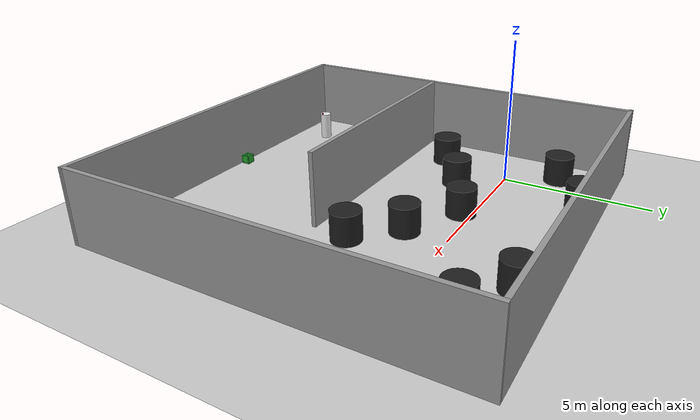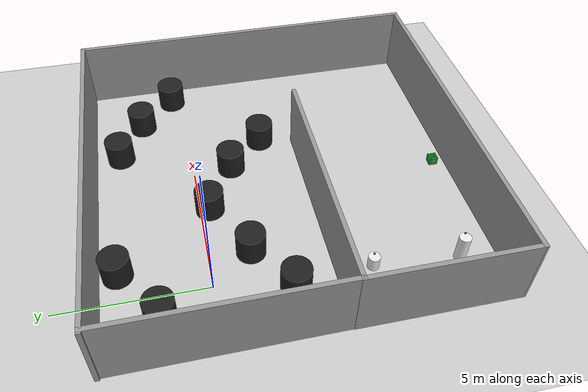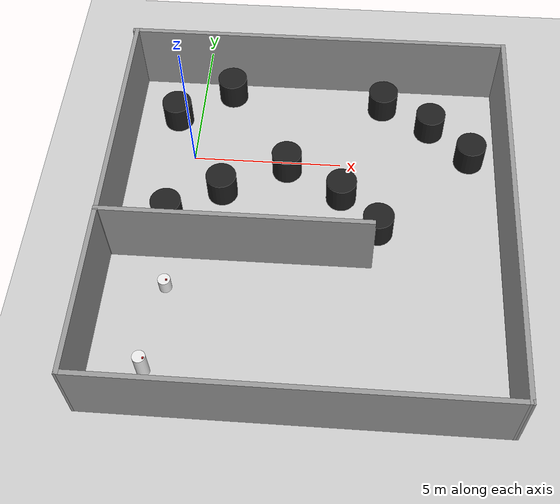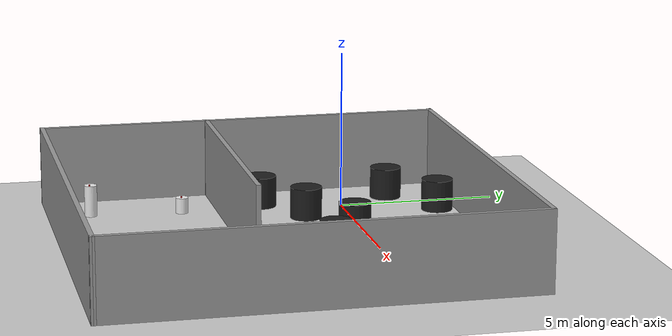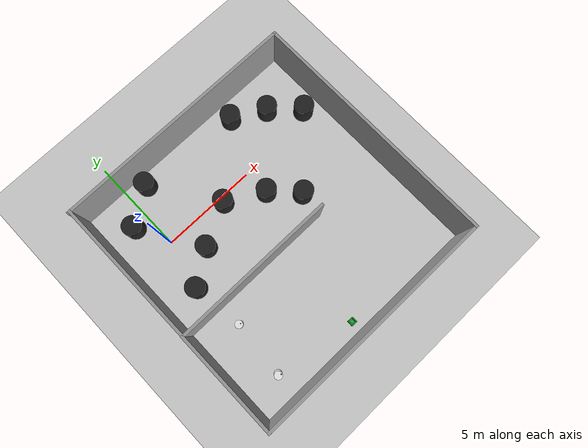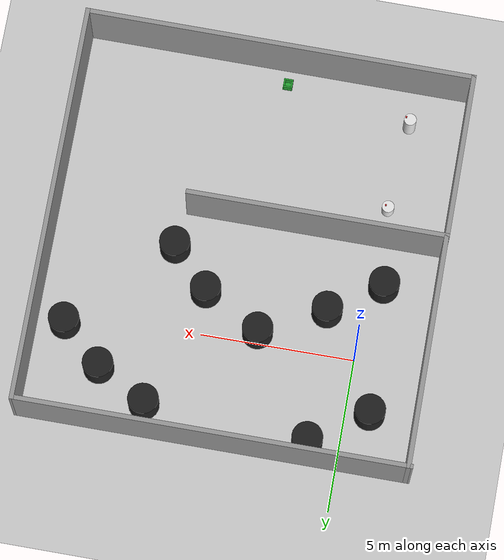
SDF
<sdf version="1.7">
 <world name="default">
  <model name="ground_plane">
   <static>1</static>
   <link name="link">
    <collision name="collision">
     <geometry><plane><normal>0 0 1</normal><size>100 100</size></plane></geometry>
     <surface>
      <contact><collide_bitmask>65535</collide_bitmask></contact>
      <friction><ode><mu>100</mu><mu2>50</mu2></ode></friction>
     </surface>
    </collision>
    <visual name="visual">
     <cast_shadows>0</cast_shadows>
     <geometry><plane><normal>0 0 1</normal><size>100 100</size></plane></geometry>
     <material>
      <script><uri>file://media/materials/scripts/gazebo.material</uri><name>Gazebo/Grey</name></script>
     </material>
    </visual>
   </link>
  </model>
  <light name="sun" type="directional">
   <pose>0 0 10 0 -0 0</pose>
   <diffuse>0.8 0.8 0.8 1</diffuse>
   <specular>0.2 0.2 0.2 1</specular>
   <attenuation>
    <range>1000</range>
    <constant>0.9</constant>
    <linear>0.01</linear>
    <quadratic>0.001</quadratic>
   </attenuation>
   <direction>-0.5 0.1 -0.9</direction>
   <spot><inner_angle>0</inner_angle><outer_angle>0</outer_angle><falloff>0</falloff></spot>
  </light>
  <model name="cube1">
   <link name="link_2">
    <inertial>
     <mass>0.009375</mass>
     <inertia>
      <ixx>3.91e-06</ixx>
      <ixy>0</ixy>
      <ixz>0</ixz>
      <iyy>3.91e-06</iyy>
      <iyz>0</iyz>
      <izz>3.91e-06</izz>
     </inertia>
    </inertial>
    <visual name="visual">
     <geometry><box><size>0.05 0.05 0.05</size></box></geometry>
     <material>
      <lighting>1</lighting>
      <script><uri>file://media/materials/scripts/gazebo.material</uri><name>Gazebo/Red</name></script>
      <ambient>1 0 0 1</ambient>
      <diffuse>1 0 0 1</diffuse>
      <specular>1 0 0 1</specular>
      <emissive>0 0 0 1</emissive>
      <shader type="vertex"><normal_map>__default__</normal_map></shader>
     </material>
    </visual>
    <collision name="collision">
     <geometry><box><size>0.05 0.05 0.05</size></box></geometry>
     <surface>
      <friction>
       <ode><mu>1</mu><mu2>1</mu2><fdir1>0 0 0</fdir1><slip1>0</slip1><slip2>0</slip2></ode>
       <torsional>
        <coefficient>1</coefficient>
        <patch_radius>0</patch_radius>
        <surface_radius>0</surface_radius>
        <use_patch_radius>1</use_patch_radius>
        <ode><slip>0</slip></ode>
       </torsional>
      </friction>
      <bounce><restitution_coefficient>0</restitution_coefficient><threshold>1e+06</threshold></bounce>
      <contact>
       <collide_without_contact>0</collide_without_contact>
       <collide_without_contact_bitmask>1</collide_without_contact_bitmask>
       <collide_bitmask>1</collide_bitmask>
       <ode>
        <soft_cfm>0</soft_cfm>
        <soft_erp>0.2</soft_erp>
        <kp>1e+13</kp>
        <kd>1</kd>
        <max_vel>0.01</max_vel>
        <min_depth>0</min_depth>
       </ode>
       <bullet>
        <split_impulse>1</split_impulse>
        <split_impulse_penetration_threshold>-0.01</split_impulse_penetration_threshold>
        <soft_cfm>0</soft_cfm>
        <soft_erp>0.2</soft_erp>
        <kp>1e+13</kp>
        <kd>1</kd>
       </bullet>
      </contact>
     </surface>
    </collision>
   </link>
   <static>0</static>
   <pose>-0.159738 -5.17279 0.524971 0 0 -0.001578</pose>
  </model>
  <model name="cube2">
   <link name="link_2">
    <inertial>
     <mass>0.009375</mass>
     <inertia>
      <ixx>3.91e-06</ixx>
      <ixy>0</ixy>
      <ixz>0</ixz>
      <iyy>3.91e-06</iyy>
      <iyz>0</iyz>
      <izz>3.91e-06</izz>
     </inertia>
    </inertial>
    <visual name="visual">
     <geometry><box><size>0.05 0.05 0.05</size></box></geometry>
     <material>
      <lighting>1</lighting>
      <script><uri>file://media/materials/scripts/gazebo.material</uri><name>Gazebo/Red</name></script>
      <ambient>1 0 0 1</ambient>
      <diffuse>1 0 0 1</diffuse>
      <specular>1 0 0 1</specular>
      <emissive>0 0 0 1</emissive>
      <shader type="vertex"><normal_map>__default__</normal_map></shader>
     </material>
    </visual>
    <collision name="collision">
     <geometry><box><size>0.05 0.05 0.05</size></box></geometry>
     <surface>
      <friction>
       <ode><mu>1</mu><mu2>1</mu2><fdir1>0 0 0</fdir1><slip1>0</slip1><slip2>0</slip2></ode>
       <torsional>
        <coefficient>1</coefficient>
        <patch_radius>0</patch_radius>
        <surface_radius>0</surface_radius>
        <use_patch_radius>1</use_patch_radius>
        <ode><slip>0</slip></ode>
       </torsional>
      </friction>
      <bounce><restitution_coefficient>0</restitution_coefficient><threshold>1e+06</threshold></bounce>
      <contact>
       <collide_without_contact>0</collide_without_contact>
       <collide_without_contact_bitmask>1</collide_without_contact_bitmask>
       <collide_bitmask>1</collide_bitmask>
       <ode>
        <soft_cfm>0</soft_cfm>
        <soft_erp>0.2</soft_erp>
        <kp>1e+13</kp>
        <kd>1</kd>
        <max_vel>0.01</max_vel>
        <min_depth>0</min_depth>
       </ode>
       <bullet>
        <split_impulse>1</split_impulse>
        <split_impulse_penetration_threshold>-0.01</split_impulse_penetration_threshold>
        <soft_cfm>0</soft_cfm>
        <soft_erp>0.2</soft_erp>
        <kp>1e+13</kp>
        <kd>1</kd>
       </bullet>
      </contact>
     </surface>
    </collision>
   </link>
   <static>0</static>
   <pose>-0.33687 -8.07433 1.02499 -0.000118 0.00018 0.006707</pose>
  </model>
  <model name="cylinder1">
   <link name="link_0">
    <inertial>
     <mass>1</mass>
     <inertia><ixx>0.145833</ixx><ixy>0</ixy><ixz>0</ixz><iyy>0.145833</iyy><iyz>0</iyz><izz>0.125</izz></inertia>
    </inertial>
    <visual name="visual">
     <geometry><cylinder><radius>0.5</radius><length>1</length></cylinder></geometry>
     <material>
      <lighting>1</lighting>
      <script><uri>file://media/materials/scripts/gazebo.material</uri><name>Gazebo/Black</name></script>
      <shader type="pixel"><normal_map>__default__</normal_map></shader>
      <ambient>0 0 0 1</ambient>
      <diffuse>0 0 0 1</diffuse>
      <specular>0.1 0.1 0.1 1</specular>
      <emissive>0 0 0 1</emissive>
     </material>
    </visual>
    <collision name="collision">
     <geometry><cylinder><radius>0.5</radius><length>1</length></cylinder></geometry>
     <surface>
      <friction>
       <ode><mu>1</mu><mu2>1</mu2><fdir1>0 0 0</fdir1><slip1>0</slip1><slip2>0</slip2></ode>
       <torsional>
        <coefficient>1</coefficient>
        <patch_radius>0</patch_radius>
        <surface_radius>0</surface_radius>
        <use_patch_radius>1</use_patch_radius>
        <ode><slip>0</slip></ode>
       </torsional>
      </friction>
      <bounce><restitution_coefficient>0</restitution_coefficient><threshold>1e+06</threshold></bounce>
      <contact>
       <collide_without_contact>0</collide_without_contact>
       <collide_without_contact_bitmask>1</collide_without_contact_bitmask>
       <collide_bitmask>1</collide_bitmask>
       <ode>
        <soft_cfm>0</soft_cfm>
        <soft_erp>0.2</soft_erp>
        <kp>1e+13</kp>
        <kd>1</kd>
        <max_vel>0.01</max_vel>
        <min_depth>0</min_depth>
       </ode>
       <bullet>
        <split_impulse>1</split_impulse>
        <split_impulse_penetration_threshold>-0.01</split_impulse_penetration_threshold>
        <soft_cfm>0</soft_cfm>
        <soft_erp>0.2</soft_erp>
        <kp>1e+13</kp>
        <kd>1</kd>
       </bullet>
      </contact>
     </surface>
    </collision>
   </link>
   <static>0</static>
   <pose>-0.777086 1.6771 0.499998 0 -0 0</pose>
  </model>
  <model name="cylinder2">
   <link name="link_0">
    <inertial>
     <mass>1</mass>
     <inertia><ixx>0.145833</ixx><ixy>0</ixy><ixz>0</ixz><iyy>0.145833</iyy><iyz>0</iyz><izz>0.125</izz></inertia>
    </inertial>
    <visual name="visual">
     <geometry><cylinder><radius>0.5</radius><length>1</length></cylinder></geometry>
     <material>
      <lighting>1</lighting>
      <script><uri>file://media/materials/scripts/gazebo.material</uri><name>Gazebo/Black</name></script>
      <shader type="pixel"><normal_map>__default__</normal_map></shader>
      <ambient>0 0 0 1</ambient>
      <diffuse>0 0 0 1</diffuse>
      <specular>0.1 0.1 0.1 1</specular>
      <emissive>0 0 0 1</emissive>
     </material>
    </visual>
    <collision name="collision">
     <geometry><cylinder><radius>0.5</radius><length>1</length></cylinder></geometry>
     <surface>
      <friction>
       <ode><mu>1</mu><mu2>1</mu2><fdir1>0 0 0</fdir1><slip1>0</slip1><slip2>0</slip2></ode>
       <torsional>
        <coefficient>1</coefficient>
        <patch_radius>0</patch_radius>
        <surface_radius>0</surface_radius>
        <use_patch_radius>1</use_patch_radius>
        <ode><slip>0</slip></ode>
       </torsional>
      </friction>
      <bounce><restitution_coefficient>0</restitution_coefficient><threshold>1e+06</threshold></bounce>
      <contact>
       <collide_without_contact>0</collide_without_contact>
       <collide_without_contact_bitmask>1</collide_without_contact_bitmask>
       <collide_bitmask>1</collide_bitmask>
       <ode>
        <soft_cfm>0</soft_cfm>
        <soft_erp>0.2</soft_erp>
        <kp>1e+13</kp>
        <kd>1</kd>
        <max_vel>0.01</max_vel>
        <min_depth>0</min_depth>
       </ode>
       <bullet>
        <split_impulse>1</split_impulse>
        <split_impulse_penetration_threshold>-0.01</split_impulse_penetration_threshold>
        <soft_cfm>0</soft_cfm>
        <soft_erp>0.2</soft_erp>
        <kp>1e+13</kp>
        <kd>1</kd>
       </bullet>
      </contact>
     </surface>
    </collision>
   </link>
   <static>0</static>
   <pose>-0.540203 -2.5323 0.499992 -0 -0 -0</pose>
  </model>
  <model name="cylinder3">
   <link name="link_0">
    <inertial>
     <mass>1</mass>
     <inertia><ixx>0.145833</ixx><ixy>0</ixy><ixz>0</ixz><iyy>0.145833</iyy><iyz>0</iyz><izz>0.125</izz></inertia>
    </inertial>
    <visual name="visual">
     <geometry><cylinder><radius>0.5</radius><length>1</length></cylinder></geometry>
     <material>
      <lighting>1</lighting>
      <script><uri>file://media/materials/scripts/gazebo.material</uri><name>Gazebo/Black</name></script>
      <shader type="pixel"><normal_map>__default__</normal_map></shader>
      <ambient>0 0 0 1</ambient>
      <diffuse>0 0 0 1</diffuse>
      <specular>0.1 0.1 0.1 1</specular>
      <emissive>0 0 0 1</emissive>
     </material>
    </visual>
    <collision name="collision">
     <geometry><cylinder><radius>0.5</radius><length>1</length></cylinder></geometry>
     <surface>
      <friction>
       <ode><mu>1</mu><mu2>1</mu2><fdir1>0 0 0</fdir1><slip1>0</slip1><slip2>0</slip2></ode>
       <torsional>
        <coefficient>1</coefficient>
        <patch_radius>0</patch_radius>
        <surface_radius>0</surface_radius>
        <use_patch_radius>1</use_patch_radius>
        <ode><slip>0</slip></ode>
       </torsional>
      </friction>
      <bounce><restitution_coefficient>0</restitution_coefficient><threshold>1e+06</threshold></bounce>
      <contact>
       <collide_without_contact>0</collide_without_contact>
       <collide_without_contact_bitmask>1</collide_without_contact_bitmask>
       <collide_bitmask>1</collide_bitmask>
       <ode>
        <soft_cfm>0</soft_cfm>
        <soft_erp>0.2</soft_erp>
        <kp>1e+13</kp>
        <kd>1</kd>
        <max_vel>0.01</max_vel>
        <min_depth>0</min_depth>
       </ode>
       <bullet>
        <split_impulse>1</split_impulse>
        <split_impulse_penetration_threshold>-0.01</split_impulse_penetration_threshold>
        <soft_cfm>0</soft_cfm>
        <soft_erp>0.2</soft_erp>
        <kp>1e+13</kp>
        <kd>1</kd>
       </bullet>
      </contact>
     </surface>
    </collision>
   </link>
   <static>0</static>
   <pose>1.12474 -1.40643 0.499992 -0 -0 -0</pose>
  </model>
  <model name="cylinder4">
   <link name="link_0">
    <inertial>
     <mass>1</mass>
     <inertia><ixx>0.145833</ixx><ixy>0</ixy><ixz>0</ixz><iyy>0.145833</iyy><iyz>0</iyz><izz>0.125</izz></inertia>
    </inertial>
    <visual name="visual">
     <geometry><cylinder><radius>0.5</radius><length>1</length></cylinder></geometry>
     <material>
      <lighting>1</lighting>
      <script><uri>file://media/materials/scripts/gazebo.material</uri><name>Gazebo/Black</name></script>
      <shader type="pixel"><normal_map>__default__</normal_map></shader>
      <ambient>0 0 0 1</ambient>
      <diffuse>0 0 0 1</diffuse>
      <specular>0.1 0.1 0.1 1</specular>
      <emissive>0 0 0 1</emissive>
     </material>
    </visual>
    <collision name="collision">
     <geometry><cylinder><radius>0.5</radius><length>1</length></cylinder></geometry>
     <surface>
      <friction>
       <ode><mu>1</mu><mu2>1</mu2><fdir1>0 0 0</fdir1><slip1>0</slip1><slip2>0</slip2></ode>
       <torsional>
        <coefficient>1</coefficient>
        <patch_radius>0</patch_radius>
        <surface_radius>0</surface_radius>
        <use_patch_radius>1</use_patch_radius>
        <ode><slip>0</slip></ode>
       </torsional>
      </friction>
      <bounce><restitution_coefficient>0</restitution_coefficient><threshold>1e+06</threshold></bounce>
      <contact>
       <collide_without_contact>0</collide_without_contact>
       <collide_without_contact_bitmask>1</collide_without_contact_bitmask>
       <collide_bitmask>1</collide_bitmask>
       <ode>
        <soft_cfm>0</soft_cfm>
        <soft_erp>0.2</soft_erp>
        <kp>1e+13</kp>
        <kd>1</kd>
        <max_vel>0.01</max_vel>
        <min_depth>0</min_depth>
       </ode>
       <bullet>
        <split_impulse>1</split_impulse>
        <split_impulse_penetration_threshold>-0.01</split_impulse_penetration_threshold>
        <soft_cfm>0</soft_cfm>
        <soft_erp>0.2</soft_erp>
        <kp>1e+13</kp>
        <kd>1</kd>
       </bullet>
      </contact>
     </surface>
    </collision>
   </link>
   <static>0</static>
   <pose>3.2081 -0.338127 0.499997 0 -0 0</pose>
  </model>
  <model name="cylinder5">
   <link name="link_0">
    <inertial>
     <mass>1</mass>
     <inertia><ixx>0.145833</ixx><ixy>0</ixy><ixz>0</ixz><iyy>0.145833</iyy><iyz>0</iyz><izz>0.125</izz></inertia>
    </inertial>
    <visual name="visual">
     <geometry><cylinder><radius>0.5</radius><length>1</length></cylinder></geometry>
     <material>
      <lighting>1</lighting>
      <script><uri>file://media/materials/scripts/gazebo.material</uri><name>Gazebo/Black</name></script>
      <shader type="pixel"><normal_map>__default__</normal_map></shader>
      <ambient>0 0 0 1</ambient>
      <diffuse>0 0 0 1</diffuse>
      <specular>0.1 0.1 0.1 1</specular>
      <emissive>0 0 0 1</emissive>
     </material>
    </visual>
    <collision name="collision">
     <geometry><cylinder><radius>0.5</radius><length>1</length></cylinder></geometry>
     <surface>
      <friction>
       <ode><mu>1</mu><mu2>1</mu2><fdir1>0 0 0</fdir1><slip1>0</slip1><slip2>0</slip2></ode>
       <torsional>
        <coefficient>1</coefficient>
        <patch_radius>0</patch_radius>
        <surface_radius>0</surface_radius>
        <use_patch_radius>1</use_patch_radius>
        <ode><slip>0</slip></ode>
       </torsional>
      </friction>
      <bounce><restitution_coefficient>0</restitution_coefficient><threshold>1e+06</threshold></bounce>
      <contact>
       <collide_without_contact>0</collide_without_contact>
       <collide_without_contact_bitmask>1</collide_without_contact_bitmask>
       <collide_bitmask>1</collide_bitmask>
       <ode>
        <soft_cfm>0</soft_cfm>
        <soft_erp>0.2</soft_erp>
        <kp>1e+13</kp>
        <kd>1</kd>
        <max_vel>0.01</max_vel>
        <min_depth>0</min_depth>
       </ode>
       <bullet>
        <split_impulse>1</split_impulse>
        <split_impulse_penetration_threshold>-0.01</split_impulse_penetration_threshold>
        <soft_cfm>0</soft_cfm>
        <soft_erp>0.2</soft_erp>
        <kp>1e+13</kp>
        <kd>1</kd>
       </bullet>
      </contact>
     </surface>
    </collision>
   </link>
   <static>0</static>
   <pose>5.08474 -1.38108 0.499997 0 -0 0</pose>
  </model>
  <model name="cylinder6">
   <link name="link_0">
    <inertial>
     <mass>1</mass>
     <inertia><ixx>0.145833</ixx><ixy>0</ixy><ixz>0</ixz><iyy>0.145833</iyy><iyz>0</iyz><izz>0.125</izz></inertia>
    </inertial>
    <visual name="visual">
     <geometry><cylinder><radius>0.5</radius><length>1</length></cylinder></geometry>
     <material>
      <lighting>1</lighting>
      <script><uri>file://media/materials/scripts/gazebo.material</uri><name>Gazebo/Black</name></script>
      <shader type="pixel"><normal_map>__default__</normal_map></shader>
      <ambient>0 0 0 1</ambient>
      <diffuse>0 0 0 1</diffuse>
      <specular>0.1 0.1 0.1 1</specular>
      <emissive>0 0 0 1</emissive>
     </material>
    </visual>
    <collision name="collision">
     <geometry><cylinder><radius>0.5</radius><length>1</length></cylinder></geometry>
     <surface>
      <friction>
       <ode><mu>1</mu><mu2>1</mu2><fdir1>0 0 0</fdir1><slip1>0</slip1><slip2>0</slip2></ode>
       <torsional>
        <coefficient>1</coefficient>
        <patch_radius>0</patch_radius>
        <surface_radius>0</surface_radius>
        <use_patch_radius>1</use_patch_radius>
        <ode><slip>0</slip></ode>
       </torsional>
      </friction>
      <bounce><restitution_coefficient>0</restitution_coefficient><threshold>1e+06</threshold></bounce>
      <contact>
       <collide_without_contact>0</collide_without_contact>
       <collide_without_contact_bitmask>1</collide_without_contact_bitmask>
       <collide_bitmask>1</collide_bitmask>
       <ode>
        <soft_cfm>0</soft_cfm>
        <soft_erp>0.2</soft_erp>
        <kp>1e+13</kp>
        <kd>1</kd>
        <max_vel>0.01</max_vel>
        <min_depth>0</min_depth>
       </ode>
       <bullet>
        <split_impulse>1</split_impulse>
        <split_impulse_penetration_threshold>-0.01</split_impulse_penetration_threshold>
        <soft_cfm>0</soft_cfm>
        <soft_erp>0.2</soft_erp>
        <kp>1e+13</kp>
        <kd>1</kd>
       </bullet>
      </contact>
     </surface>
    </collision>
   </link>
   <static>0</static>
   <pose>6.32471 -2.67805 0.5 0 -0 0</pose>
  </model>
  <model name="cylinder7">
   <link name="link_0">
    <inertial>
     <mass>1</mass>
     <inertia><ixx>0.145833</ixx><ixy>0</ixy><ixz>0</ixz><iyy>0.145833</iyy><iyz>0</iyz><izz>0.125</izz></inertia>
    </inertial>
    <visual name="visual">
     <geometry><cylinder><radius>0.5</radius><length>1</length></cylinder></geometry>
     <material>
      <lighting>1</lighting>
      <script><uri>file://media/materials/scripts/gazebo.material</uri><name>Gazebo/Black</name></script>
      <shader type="pixel"><normal_map>__default__</normal_map></shader>
      <ambient>0 0 0 1</ambient>
      <diffuse>0 0 0 1</diffuse>
      <specular>0.1 0.1 0.1 1</specular>
      <emissive>0 0 0 1</emissive>
     </material>
    </visual>
    <collision name="collision">
     <geometry><cylinder><radius>0.5</radius><length>1</length></cylinder></geometry>
     <surface>
      <friction>
       <ode><mu>1</mu><mu2>1</mu2><fdir1>0 0 0</fdir1><slip1>0</slip1><slip2>0</slip2></ode>
       <torsional>
        <coefficient>1</coefficient>
        <patch_radius>0</patch_radius>
        <surface_radius>0</surface_radius>
        <use_patch_radius>1</use_patch_radius>
        <ode><slip>0</slip></ode>
       </torsional>
      </friction>
      <bounce><restitution_coefficient>0</restitution_coefficient><threshold>1e+06</threshold></bounce>
      <contact>
       <collide_without_contact>0</collide_without_contact>
       <collide_without_contact_bitmask>1</collide_without_contact_bitmask>
       <collide_bitmask>1</collide_bitmask>
       <ode>
        <soft_cfm>0</soft_cfm>
        <soft_erp>0.2</soft_erp>
        <kp>1e+13</kp>
        <kd>1</kd>
        <max_vel>0.01</max_vel>
        <min_depth>0</min_depth>
       </ode>
       <bullet>
        <split_impulse>1</split_impulse>
        <split_impulse_penetration_threshold>-0.01</split_impulse_penetration_threshold>
        <soft_cfm>0</soft_cfm>
        <soft_erp>0.2</soft_erp>
        <kp>1e+13</kp>
        <kd>1</kd>
       </bullet>
      </contact>
     </surface>
    </collision>
   </link>
   <static>0</static>
   <pose>6.38707 2.59126 0.499992 -0 -0 -0</pose>
  </model>
  <model name="cylinder8">
   <link name="link_0">
    <inertial>
     <mass>1</mass>
     <inertia><ixx>0.145833</ixx><ixy>0</ixy><ixz>0</ixz><iyy>0.145833</iyy><iyz>0</iyz><izz>0.125</izz></inertia>
    </inertial>
    <visual name="visual">
     <geometry><cylinder><radius>0.5</radius><length>1</length></cylinder></geometry>
     <material>
      <lighting>1</lighting>
      <script><uri>file://media/materials/scripts/gazebo.material</uri><name>Gazebo/Black</name></script>
      <shader type="pixel"><normal_map>__default__</normal_map></shader>
      <ambient>0 0 0 1</ambient>
      <diffuse>0 0 0 1</diffuse>
      <specular>0.1 0.1 0.1 1</specular>
      <emissive>0 0 0 1</emissive>
     </material>
    </visual>
    <collision name="collision">
     <geometry><cylinder><radius>0.5</radius><length>1</length></cylinder></geometry>
     <surface>
      <friction>
       <ode><mu>1</mu><mu2>1</mu2><fdir1>0 0 0</fdir1><slip1>0</slip1><slip2>0</slip2></ode>
       <torsional>
        <coefficient>1</coefficient>
        <patch_radius>0</patch_radius>
        <surface_radius>0</surface_radius>
        <use_patch_radius>1</use_patch_radius>
        <ode><slip>0</slip></ode>
       </torsional>
      </friction>
      <bounce><restitution_coefficient>0</restitution_coefficient><threshold>1e+06</threshold></bounce>
      <contact>
       <collide_without_contact>0</collide_without_contact>
       <collide_without_contact_bitmask>1</collide_without_contact_bitmask>
       <collide_bitmask>1</collide_bitmask>
       <ode>
        <soft_cfm>0</soft_cfm>
        <soft_erp>0.2</soft_erp>
        <kp>1e+13</kp>
        <kd>1</kd>
        <max_vel>0.01</max_vel>
        <min_depth>0</min_depth>
       </ode>
       <bullet>
        <split_impulse>1</split_impulse>
        <split_impulse_penetration_threshold>-0.01</split_impulse_penetration_threshold>
        <soft_cfm>0</soft_cfm>
        <soft_erp>0.2</soft_erp>
        <kp>1e+13</kp>
        <kd>1</kd>
       </bullet>
      </contact>
     </surface>
    </collision>
   </link>
   <static>0</static>
   <pose>8.02806 1.67804 0.499992 -0 -0 -0</pose>
  </model>
  <model name="cylinder9">
   <link name="link_0">
    <inertial>
     <mass>1</mass>
     <inertia><ixx>0.145833</ixx><ixy>0</ixy><ixz>0</ixz><iyy>0.145833</iyy><iyz>0</iyz><izz>0.125</izz></inertia>
    </inertial>
    <visual name="visual">
     <geometry><cylinder><radius>0.5</radius><length>1</length></cylinder></geometry>
     <material>
      <lighting>1</lighting>
      <script><uri>file://media/materials/scripts/gazebo.material</uri><name>Gazebo/Black</name></script>
      <shader type="pixel"><normal_map>__default__</normal_map></shader>
      <ambient>0 0 0 1</ambient>
      <diffuse>0 0 0 1</diffuse>
      <specular>0.1 0.1 0.1 1</specular>
      <emissive>0 0 0 1</emissive>
     </material>
    </visual>
    <collision name="collision">
     <geometry><cylinder><radius>0.5</radius><length>1</length></cylinder></geometry>
     <surface>
      <friction>
       <ode><mu>1</mu><mu2>1</mu2><fdir1>0 0 0</fdir1><slip1>0</slip1><slip2>0</slip2></ode>
       <torsional>
        <coefficient>1</coefficient>
        <patch_radius>0</patch_radius>
        <surface_radius>0</surface_radius>
        <use_patch_radius>1</use_patch_radius>
        <ode><slip>0</slip></ode>
       </torsional>
      </friction>
      <bounce><restitution_coefficient>0</restitution_coefficient><threshold>1e+06</threshold></bounce>
      <contact>
       <collide_without_contact>0</collide_without_contact>
       <collide_without_contact_bitmask>1</collide_without_contact_bitmask>
       <collide_bitmask>1</collide_bitmask>
       <ode>
        <soft_cfm>0</soft_cfm>
        <soft_erp>0.2</soft_erp>
        <kp>1e+13</kp>
        <kd>1</kd>
        <max_vel>0.01</max_vel>
        <min_depth>0</min_depth>
       </ode>
       <bullet>
        <split_impulse>1</split_impulse>
        <split_impulse_penetration_threshold>-0.01</split_impulse_penetration_threshold>
        <soft_cfm>0</soft_cfm>
        <soft_erp>0.2</soft_erp>
        <kp>1e+13</kp>
        <kd>1</kd>
       </bullet>
      </contact>
     </surface>
    </collision>
   </link>
   <static>0</static>
   <pose>9.37243 0.421085 0.499998 0 -0 0</pose>
  </model>
  <model name="cylinder10">
   <link name="link_0">
    <inertial>
     <mass>1</mass>
     <inertia><ixx>0.145833</ixx><ixy>0</ixy><ixz>0</ixz><iyy>0.145833</iyy><iyz>0</iyz><izz>0.125</izz></inertia>
    </inertial>
    <visual name="visual">
     <geometry><cylinder><radius>0.5</radius><length>1</length></cylinder></geometry>
     <material>
      <lighting>1</lighting>
      <script><uri>file://media/materials/scripts/gazebo.material</uri><name>Gazebo/Black</name></script>
      <shader type="pixel"><normal_map>__default__</normal_map></shader>
      <ambient>0 0 0 1</ambient>
      <diffuse>0 0 0 1</diffuse>
      <specular>0.1 0.1 0.1 1</specular>
      <emissive>0 0 0 1</emissive>
     </material>
    </visual>
    <collision name="collision">
     <geometry><cylinder><radius>0.5</radius><length>1</length></cylinder></geometry>
     <surface>
      <friction>
       <ode><mu>1</mu><mu2>1</mu2><fdir1>0 0 0</fdir1><slip1>0</slip1><slip2>0</slip2></ode>
       <torsional>
        <coefficient>1</coefficient>
        <patch_radius>0</patch_radius>
        <surface_radius>0</surface_radius>
        <use_patch_radius>1</use_patch_radius>
        <ode><slip>0</slip></ode>
       </torsional>
      </friction>
      <bounce><restitution_coefficient>0</restitution_coefficient><threshold>1e+06</threshold></bounce>
      <contact>
       <collide_without_contact>0</collide_without_contact>
       <collide_without_contact_bitmask>1</collide_without_contact_bitmask>
       <collide_bitmask>1</collide_bitmask>
       <ode>
        <soft_cfm>0</soft_cfm>
        <soft_erp>0.2</soft_erp>
        <kp>1e+13</kp>
        <kd>1</kd>
        <max_vel>0.01</max_vel>
        <min_depth>0</min_depth>
       </ode>
       <bullet>
        <split_impulse>1</split_impulse>
        <split_impulse_penetration_threshold>-0.01</split_impulse_penetration_threshold>
        <soft_cfm>0</soft_cfm>
        <soft_erp>0.2</soft_erp>
        <kp>1e+13</kp>
        <kd>1</kd>
       </bullet>
      </contact>
     </surface>
    </collision>
   </link>
   <static>0</static>
   <pose>1.03709 2.90645 0.499992 -0 -0 -0</pose>
  </model>
  <model name="cylinder11">
   <link name="link_0">
    <inertial>
     <mass>1</mass>
     <inertia><ixx>0.145833</ixx><ixy>0</ixy><ixz>0</ixz><iyy>0.145833</iyy><iyz>0</iyz><izz>0.125</izz></inertia>
    </inertial>
    <visual name="visual">
     <geometry><cylinder><radius>0.2</radius><length>1</length></cylinder></geometry>
     <material>
      <lighting>1</lighting>
      <script><uri>file://media/materials/scripts/gazebo.material</uri><name>Gazebo/White</name></script>
      <shader type="pixel"><normal_map>__default__</normal_map></shader>
      <ambient>1 1 1 1</ambient>
      <diffuse>1 1 1 1</diffuse>
      <specular>0 0 0 1</specular>
      <emissive>0 0 0 1</emissive>
     </material>
    </visual>
    <collision name="collision">
     <geometry><cylinder><radius>0.2</radius><length>1</length></cylinder></geometry>
     <surface>
      <friction>
       <ode><mu>1</mu><mu2>1</mu2><fdir1>0 0 0</fdir1><slip1>0</slip1><slip2>0</slip2></ode>
       <torsional>
        <coefficient>1</coefficient>
        <patch_radius>0</patch_radius>
        <surface_radius>0</surface_radius>
        <use_patch_radius>1</use_patch_radius>
        <ode><slip>0</slip></ode>
       </torsional>
      </friction>
      <bounce><restitution_coefficient>0</restitution_coefficient><threshold>1e+06</threshold></bounce>
      <contact>
       <collide_without_contact>0</collide_without_contact>
       <collide_without_contact_bitmask>1</collide_without_contact_bitmask>
       <collide_bitmask>1</collide_bitmask>
       <ode>
        <soft_cfm>0</soft_cfm>
        <soft_erp>0.2</soft_erp>
        <kp>1e+13</kp>
        <kd>1</kd>
        <max_vel>0.01</max_vel>
        <min_depth>0</min_depth>
       </ode>
       <bullet>
        <split_impulse>1</split_impulse>
        <split_impulse_penetration_threshold>-0.01</split_impulse_penetration_threshold>
        <soft_cfm>0</soft_cfm>
        <soft_erp>0.2</soft_erp>
        <kp>1e+13</kp>
        <kd>1</kd>
       </bullet>
      </contact>
     </surface>
    </collision>
   </link>
   <static>0</static>
   <pose>-0.472788 -8.02586 0.5 0 -0 -1.5e-05</pose>
  </model>
  <model name="cylinder12">
   <link name="link_0">
    <inertial>
     <mass>1</mass>
     <inertia><ixx>0.145833</ixx><ixy>0</ixy><ixz>0</ixz><iyy>0.145833</iyy><iyz>0</iyz><izz>0.125</izz></inertia>
    </inertial>
    <visual name="visual">
     <geometry><cylinder><radius>0.2</radius><length>0.5</length></cylinder></geometry>
     <material>
      <lighting>1</lighting>
      <script><uri>file://media/materials/scripts/gazebo.material</uri><name>Gazebo/White</name></script>
      <shader type="pixel"><normal_map>__default__</normal_map></shader>
      <ambient>1 1 1 1</ambient>
      <diffuse>1 1 1 1</diffuse>
      <specular>0 0 0 1</specular>
      <emissive>0 0 0 1</emissive>
     </material>
    </visual>
    <collision name="collision">
     <geometry><cylinder><radius>0.2</radius><length>0.5</length></cylinder></geometry>
     <surface>
      <friction>
       <ode><mu>1</mu><mu2>1</mu2><fdir1>0 0 0</fdir1><slip1>0</slip1><slip2>0</slip2></ode>
       <torsional>
        <coefficient>1</coefficient>
        <patch_radius>0</patch_radius>
        <surface_radius>0</surface_radius>
        <use_patch_radius>1</use_patch_radius>
        <ode><slip>0</slip></ode>
       </torsional>
      </friction>
      <bounce><restitution_coefficient>0</restitution_coefficient><threshold>1e+06</threshold></bounce>
      <contact>
       <collide_without_contact>0</collide_without_contact>
       <collide_without_contact_bitmask>1</collide_without_contact_bitmask>
       <collide_bitmask>1</collide_bitmask>
       <ode>
        <soft_cfm>0</soft_cfm>
        <soft_erp>0.2</soft_erp>
        <kp>1e+13</kp>
        <kd>1</kd>
        <max_vel>0.01</max_vel>
        <min_depth>0</min_depth>
       </ode>
       <bullet>
        <split_impulse>1</split_impulse>
        <split_impulse_penetration_threshold>-0.01</split_impulse_penetration_threshold>
        <soft_cfm>0</soft_cfm>
        <soft_erp>0.2</soft_erp>
        <kp>1e+13</kp>
        <kd>1</kd>
       </bullet>
      </contact>
     </surface>
    </collision>
   </link>
   <static>0</static>
   <pose>-0.243944 -5.1454 0.24999 0 0 -2.5e-05</pose>
  </model>
  <light name="spot_light" type="spot">
   <pose>3.23001 -5 25 0 -0 0</pose>
   <diffuse>1 1 1 1</diffuse>
   <specular>1 1 1 1</specular>
   <direction>0 0 -1</direction>
   <attenuation>
    <range>100</range>
    <constant>0.1</constant>
    <linear>0.01</linear>
    <quadratic>0.001</quadratic>
   </attenuation>
   <cast_shadows>0</cast_shadows>
   <spot><inner_angle>0.9</inner_angle><outer_angle>1.5</outer_angle><falloff>1</falloff></spot>
  </light>
  <model name="greenBin">
   <link name="link_0">
    <pose>0 -0.125 0.025 0 -0 0</pose>
    <inertial>
     <mass>1</mass>
     <inertia>
      <ixx>0.166667</ixx>
      <ixy>0</ixy>
      <ixz>0</ixz>
      <iyy>0.166667</iyy>
      <iyz>0</iyz>
      <izz>0.166667</izz>
     </inertia>
    </inertial>
    <visual name="visual">
     <geometry><box><size>0.3 0.05 0.3</size></box></geometry>
     <material>
      <lighting>1</lighting>
      <script><uri>file://media/materials/scripts/gazebo.material</uri><name>Gazebo/Green</name></script>
      <ambient>0 1 0 1</ambient>
      <diffuse>0 1 0 1</diffuse>
      <specular>0.01 1 0.01 1</specular>
      <emissive>0 0 0 1</emissive>
      <shader type="vertex"><normal_map>__default__</normal_map></shader>
     </material>
    </visual>
    <collision name="collision">
     <geometry><box><size>0.3 0.05 0.3</size></box></geometry>
     <surface>
      <friction>
       <ode><mu>1</mu><mu2>1</mu2><fdir1>0 0 0</fdir1><slip1>0</slip1><slip2>0</slip2></ode>
       <torsional>
        <coefficient>1</coefficient>
        <patch_radius>0</patch_radius>
        <surface_radius>0</surface_radius>
        <use_patch_radius>1</use_patch_radius>
        <ode><slip>0</slip></ode>
       </torsional>
      </friction>
      <bounce><restitution_coefficient>0</restitution_coefficient><threshold>1e+06</threshold></bounce>
      <contact>
       <collide_without_contact>0</collide_without_contact>
       <collide_without_contact_bitmask>1</collide_without_contact_bitmask>
       <collide_bitmask>1</collide_bitmask>
       <ode>
        <soft_cfm>0</soft_cfm>
        <soft_erp>0.2</soft_erp>
        <kp>1e+13</kp>
        <kd>1</kd>
        <max_vel>0.01</max_vel>
        <min_depth>0</min_depth>
       </ode>
       <bullet>
        <split_impulse>1</split_impulse>
        <split_impulse_penetration_threshold>-0.01</split_impulse_penetration_threshold>
        <soft_cfm>0</soft_cfm>
        <soft_erp>0.2</soft_erp>
        <kp>1e+13</kp>
        <kd>1</kd>
       </bullet>
      </contact>
     </surface>
    </collision>
   </link>
   <link name="link_0_clone">
    <pose>0 0.125 0.025 0 -0 0</pose>
    <inertial>
     <mass>1</mass>
     <inertia>
      <ixx>0.166667</ixx>
      <ixy>0</ixy>
      <ixz>0</ixz>
      <iyy>0.166667</iyy>
      <iyz>0</iyz>
      <izz>0.166667</izz>
     </inertia>
    </inertial>
    <visual name="visual">
     <geometry><box><size>0.3 0.05 0.3</size></box></geometry>
     <material>
      <lighting>1</lighting>
      <script><uri>file://media/materials/scripts/gazebo.material</uri><name>Gazebo/Green</name></script>
      <ambient>0 1 0 1</ambient>
      <diffuse>0 1 0 1</diffuse>
      <specular>0.01 1 0.01 1</specular>
      <emissive>0 0 0 1</emissive>
      <shader type="vertex"><normal_map>__default__</normal_map></shader>
     </material>
    </visual>
    <collision name="collision">
     <geometry><box><size>0.3 0.05 0.3</size></box></geometry>
     <surface>
      <friction>
       <ode><mu>1</mu><mu2>1</mu2><fdir1>0 0 0</fdir1><slip1>0</slip1><slip2>0</slip2></ode>
       <torsional>
        <coefficient>1</coefficient>
        <patch_radius>0</patch_radius>
        <surface_radius>0</surface_radius>
        <use_patch_radius>1</use_patch_radius>
        <ode><slip>0</slip></ode>
       </torsional>
      </friction>
      <bounce><restitution_coefficient>0</restitution_coefficient><threshold>1e+06</threshold></bounce>
      <contact>
       <collide_without_contact>0</collide_without_contact>
       <collide_without_contact_bitmask>1</collide_without_contact_bitmask>
       <collide_bitmask>1</collide_bitmask>
       <ode>
        <soft_cfm>0</soft_cfm>
        <soft_erp>0.2</soft_erp>
        <kp>1e+13</kp>
        <kd>1</kd>
        <max_vel>0.01</max_vel>
        <min_depth>0</min_depth>
       </ode>
       <bullet>
        <split_impulse>1</split_impulse>
        <split_impulse_penetration_threshold>-0.01</split_impulse_penetration_threshold>
        <soft_cfm>0</soft_cfm>
        <soft_erp>0.2</soft_erp>
        <kp>1e+13</kp>
        <kd>1</kd>
       </bullet>
      </contact>
     </surface>
    </collision>
   </link>
   <link name="link_0_clone_0">
    <pose>-0.124999 -0 0.025 0 -0 1.5708</pose>
    <inertial>
     <mass>1</mass>
     <inertia>
      <ixx>0.166667</ixx>
      <ixy>0</ixy>
      <ixz>0</ixz>
      <iyy>0.166667</iyy>
      <iyz>0</iyz>
      <izz>0.166667</izz>
     </inertia>
    </inertial>
    <visual name="visual">
     <geometry><box><size>0.3 0.05 0.3</size></box></geometry>
     <material>
      <lighting>1</lighting>
      <script><uri>file://media/materials/scripts/gazebo.material</uri><name>Gazebo/Green</name></script>
      <ambient>0 1 0 1</ambient>
      <diffuse>0 1 0 1</diffuse>
      <specular>0.01 1 0.01 1</specular>
      <emissive>0 0 0 1</emissive>
      <shader type="vertex"><normal_map>__default__</normal_map></shader>
     </material>
    </visual>
    <collision name="collision">
     <geometry><box><size>0.3 0.05 0.3</size></box></geometry>
     <surface>
      <friction>
       <ode><mu>1</mu><mu2>1</mu2><fdir1>0 0 0</fdir1><slip1>0</slip1><slip2>0</slip2></ode>
       <torsional>
        <coefficient>1</coefficient>
        <patch_radius>0</patch_radius>
        <surface_radius>0</surface_radius>
        <use_patch_radius>1</use_patch_radius>
        <ode><slip>0</slip></ode>
       </torsional>
      </friction>
      <bounce><restitution_coefficient>0</restitution_coefficient><threshold>1e+06</threshold></bounce>
      <contact>
       <collide_without_contact>0</collide_without_contact>
       <collide_without_contact_bitmask>1</collide_without_contact_bitmask>
       <collide_bitmask>1</collide_bitmask>
       <ode>
        <soft_cfm>0</soft_cfm>
        <soft_erp>0.2</soft_erp>
        <kp>1e+13</kp>
        <kd>1</kd>
        <max_vel>0.01</max_vel>
        <min_depth>0</min_depth>
       </ode>
       <bullet>
        <split_impulse>1</split_impulse>
        <split_impulse_penetration_threshold>-0.01</split_impulse_penetration_threshold>
        <soft_cfm>0</soft_cfm>
        <soft_erp>0.2</soft_erp>
        <kp>1e+13</kp>
        <kd>1</kd>
       </bullet>
      </contact>
     </surface>
    </collision>
   </link>
   <link name="link_0_clone_0_clone">
    <pose>0.124999 0 0.025 0 -0 1.5708</pose>
    <inertial>
     <mass>1</mass>
     <inertia>
      <ixx>0.166667</ixx>
      <ixy>0</ixy>
      <ixz>0</ixz>
      <iyy>0.166667</iyy>
      <iyz>0</iyz>
      <izz>0.166667</izz>
     </inertia>
    </inertial>
    <visual name="visual">
     <geometry><box><size>0.3 0.05 0.3</size></box></geometry>
     <material>
      <lighting>1</lighting>
      <script><uri>file://media/materials/scripts/gazebo.material</uri><name>Gazebo/Green</name></script>
      <ambient>0 1 0 1</ambient>
      <diffuse>0 1 0 1</diffuse>
      <specular>0.01 1 0.01 1</specular>
      <emissive>0 0 0 1</emissive>
      <shader type="vertex"><normal_map>__default__</normal_map></shader>
     </material>
    </visual>
    <collision name="collision">
     <geometry><box><size>0.3 0.05 0.3</size></box></geometry>
     <surface>
      <friction>
       <ode><mu>1</mu><mu2>1</mu2><fdir1>0 0 0</fdir1><slip1>0</slip1><slip2>0</slip2></ode>
       <torsional>
        <coefficient>1</coefficient>
        <patch_radius>0</patch_radius>
        <surface_radius>0</surface_radius>
        <use_patch_radius>1</use_patch_radius>
        <ode><slip>0</slip></ode>
       </torsional>
      </friction>
      <bounce><restitution_coefficient>0</restitution_coefficient><threshold>1e+06</threshold></bounce>
      <contact>
       <collide_without_contact>0</collide_without_contact>
       <collide_without_contact_bitmask>1</collide_without_contact_bitmask>
       <collide_bitmask>1</collide_bitmask>
       <ode>
        <soft_cfm>0</soft_cfm>
        <soft_erp>0.2</soft_erp>
        <kp>1e+13</kp>
        <kd>1</kd>
        <max_vel>0.01</max_vel>
        <min_depth>0</min_depth>
       </ode>
       <bullet>
        <split_impulse>1</split_impulse>
        <split_impulse_penetration_threshold>-0.01</split_impulse_penetration_threshold>
        <soft_cfm>0</soft_cfm>
        <soft_erp>0.2</soft_erp>
        <kp>1e+13</kp>
        <kd>1</kd>
       </bullet>
      </contact>
     </surface>
    </collision>
   </link>
   <link name="link_0_clone_1">
    <pose>0 0 -0.099999 1.5708 -0 0</pose>
    <inertial>
     <mass>1</mass>
     <inertia>
      <ixx>0.166667</ixx>
      <ixy>0</ixy>
      <ixz>0</ixz>
      <iyy>0.166667</iyy>
      <iyz>0</iyz>
      <izz>0.166667</izz>
     </inertia>
    </inertial>
    <visual name="visual">
     <geometry><box><size>0.3 0.05 0.3</size></box></geometry>
     <material>
      <lighting>1</lighting>
      <script><uri>file://media/materials/scripts/gazebo.material</uri><name>Gazebo/Green</name></script>
      <ambient>0 1 0 1</ambient>
      <diffuse>0 1 0 1</diffuse>
      <specular>0.01 1 0.01 1</specular>
      <emissive>0 0 0 1</emissive>
      <shader type="vertex"><normal_map>__default__</normal_map></shader>
     </material>
    </visual>
    <collision name="collision">
     <geometry><box><size>0.3 0.05 0.3</size></box></geometry>
     <surface>
      <friction>
       <ode><mu>1</mu><mu2>1</mu2><fdir1>0 0 0</fdir1><slip1>0</slip1><slip2>0</slip2></ode>
       <torsional>
        <coefficient>1</coefficient>
        <patch_radius>0</patch_radius>
        <surface_radius>0</surface_radius>
        <use_patch_radius>1</use_patch_radius>
        <ode><slip>0</slip></ode>
       </torsional>
      </friction>
      <bounce><restitution_coefficient>0</restitution_coefficient><threshold>1e+06</threshold></bounce>
      <contact>
       <collide_without_contact>0</collide_without_contact>
       <collide_without_contact_bitmask>1</collide_without_contact_bitmask>
       <collide_bitmask>1</collide_bitmask>
       <ode>
        <soft_cfm>0</soft_cfm>
        <soft_erp>0.2</soft_erp>
        <kp>1e+13</kp>
        <kd>1</kd>
        <max_vel>0.01</max_vel>
        <min_depth>0</min_depth>
       </ode>
       <bullet>
        <split_impulse>1</split_impulse>
        <split_impulse_penetration_threshold>-0.01</split_impulse_penetration_threshold>
        <soft_cfm>0</soft_cfm>
        <soft_erp>0.2</soft_erp>
        <kp>1e+13</kp>
        <kd>1</kd>
       </bullet>
      </contact>
     </surface>
    </collision>
   </link>
   <static>1</static>
   <pose>3.66348 -8.69612 0.365455 0 -0 0</pose>
  </model>
  <model name="room22">
   <pose>3.73189 -2.90134 0 0 -0 0</pose>
   <link name="Wall_10">
    <collision name="Wall_10_Collision">
     <geometry><box><size>13.092 0.15 2.5</size></box></geometry>
     <pose>0 0 1.25 0 -0 0</pose>
    </collision>
    <visual name="Wall_10_Visual">
     <pose>0 0 1.25 0 -0 0</pose>
     <geometry><box><size>13.092 0.15 2.5</size></box></geometry>
     <material>
      <script><uri>file://media/materials/scripts/gazebo.material</uri><name>Gazebo/Grey</name></script>
      <ambient>1 1 1 1</ambient>
     </material>
     <meta><layer>0</layer></meta>
    </visual>
    <pose>6.62786 -0.000121 0 0 -0 -1.56842</pose>
   </link>
   <link name="Wall_11">
    <collision name="Wall_11_Collision">
     <geometry><box><size>12.7792 0.15 2.5</size></box></geometry>
     <pose>0 0 1.25 0 -0 0</pose>
    </collision>
    <visual name="Wall_11_Visual">
     <pose>0 0 1.25 0 -0 0</pose>
     <geometry><box><size>12.7792 0.15 2.5</size></box></geometry>
     <material>
      <script><uri>file://media/materials/scripts/gazebo.material</uri><name>Gazebo/Grey</name></script>
      <ambient>1 1 1 1</ambient>
     </material>
     <meta><layer>0</layer></meta>
    </visual>
    <pose>0.328708 -6.44116 0 0 -0 3.13685</pose>
   </link>
   <link name="Wall_12">
    <collision name="Wall_12_Collision">
     <geometry><box><size>5.5 0.15 2.5</size></box></geometry>
     <pose>0 0 1.25 0 -0 0</pose>
    </collision>
    <visual name="Wall_12_Visual">
     <pose>0 0 1.25 0 -0 0</pose>
     <geometry><box><size>5.5 0.15 2.5</size></box></geometry>
     <material>
      <script><uri>file://media/materials/scripts/gazebo.material</uri><name>Gazebo/Grey</name></script>
      <ambient>1 1 1 1</ambient>
     </material>
     <meta><layer>0</layer></meta>
    </visual>
    <pose>-5.98583 -3.73623 0 0 -0 1.5708</pose>
   </link>
   <link name="Wall_5">
    <collision name="Wall_5_Collision">
     <geometry><box><size>7.68291 0.15 2.5</size></box></geometry>
     <pose>0 0 1.25 0 -0 0</pose>
    </collision>
    <visual name="Wall_5_Visual">
     <pose>0 0 1.25 0 -0 0</pose>
     <geometry><box><size>7.68291 0.15 2.5</size></box></geometry>
     <material>
      <script><uri>file://media/materials/scripts/gazebo.material</uri><name>Gazebo/Grey</name></script>
      <ambient>1 1 1 1</ambient>
     </material>
     <meta><layer>0</layer></meta>
    </visual>
    <pose>-5.97776 2.70481 0 0 -0 -1.5682</pose>
   </link>
   <link name="Wall_7">
    <collision name="Wall_7_Collision">
     <geometry><box><size>8.5 0.15 2.5</size></box></geometry>
     <pose>0 0 1.25 0 -0 0</pose>
    </collision>
    <visual name="Wall_7_Visual">
     <pose>0 0 1.25 0 -0 0</pose>
     <geometry><box><size>8.5 0.15 2.5</size></box></geometry>
     <material>
      <script><uri>file://media/materials/scripts/gazebo.material</uri><name>Gazebo/Grey</name></script>
      <ambient>1 1 1 1</ambient>
     </material>
     <meta><layer>0</layer></meta>
    </visual>
    <pose>-1.81083 -1.06123 0 0 -0 0</pose>
   </link>
   <link name="Wall_9">
    <collision name="Wall_9_Collision">
     <geometry><box><size>12.75 0.15 2.5</size></box></geometry>
     <pose>0 0 1.25 0 -0 0</pose>
    </collision>
    <visual name="Wall_9_Visual">
     <pose>0 0 1.25 0 -0 0</pose>
     <geometry><box><size>12.75 0.15 2.5</size></box></geometry>
     <material>
      <script><uri>file://media/materials/scripts/gazebo.material</uri><name>Gazebo/Grey</name></script>
      <ambient>1 1 1 1</ambient>
     </material>
     <meta><layer>0</layer></meta>
    </visual>
    <pose>0.250951 6.47085 0 0 -0 0</pose>
   </link>
   <static>1</static>
  </model>
  <gravity>0 0 -9.8</gravity>
  <magnetic_field>6e-06 2.3e-05 -4.2e-05</magnetic_field>
  <atmosphere type="adiabatic"/>
  <physics type="ode">
   <max_step_size>0.001</max_step_size>
   <real_time_factor>1</real_time_factor>
   <real_time_update_rate>1000</real_time_update_rate>
  </physics>
  <scene><ambient>0.4 0.4 0.4 1</ambient><background>0.7 0.7 0.7 1</background><shadows>1</shadows></scene>
  <spherical_coordinates>
   <surface_model>EARTH_WGS84</surface_model>
   <latitude_deg>0</latitude_deg>
   <longitude_deg>0</longitude_deg>
   <elevation>0</elevation>
   <heading_deg>0</heading_deg>
  </spherical_coordinates>
 </world>
</sdf>
